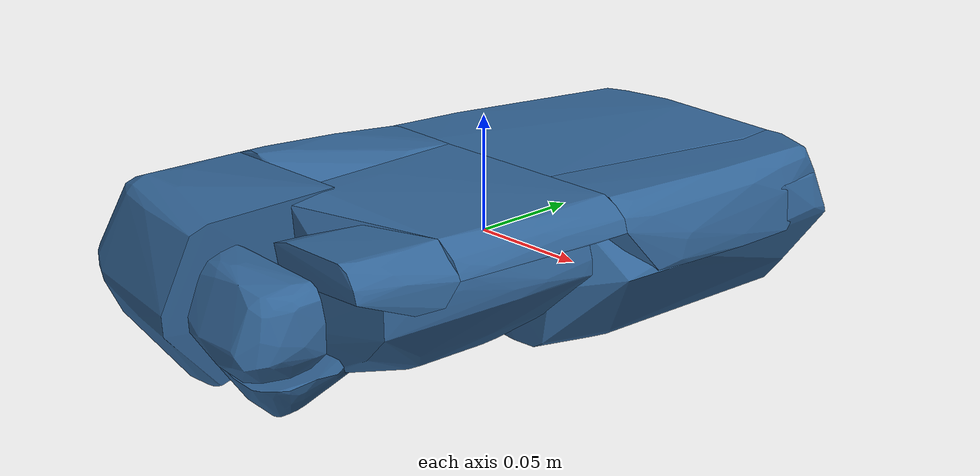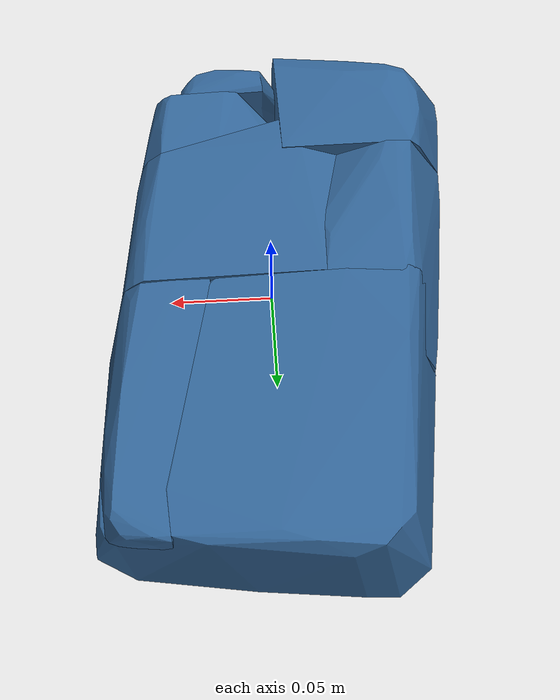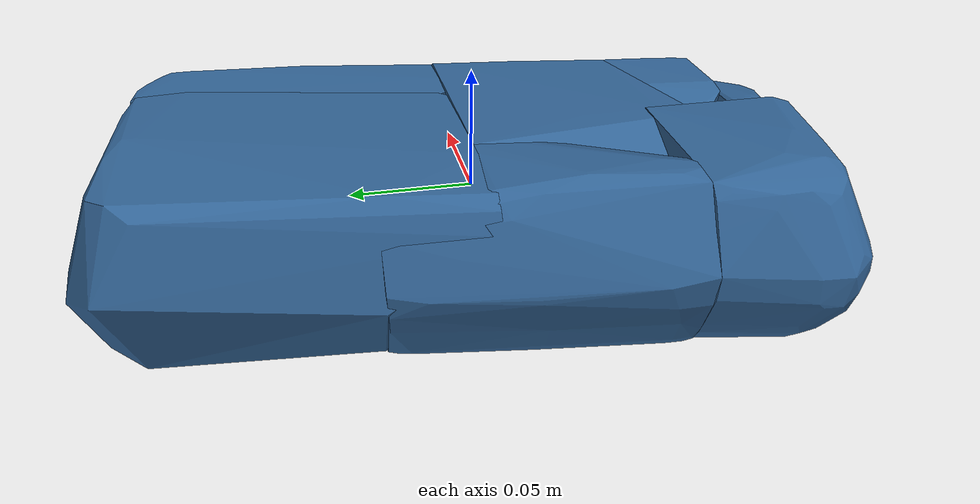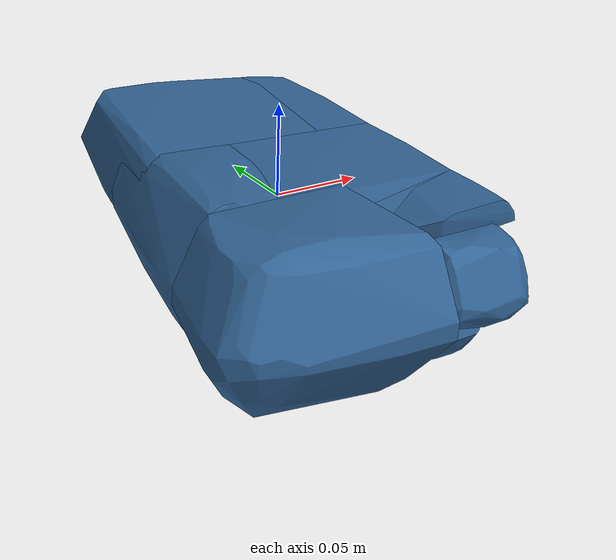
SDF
<?xml version='1.0' encoding='UTF-8'?>
<!-- This SDF was autogenerated by obj_to_drake_sdf.py -->
<sdf version="1.7">
  <model name="egg_carton">
    <link name="egg_carton">
      <inertial>
        <pose>0 0 0 0 0 0</pose>
        <mass>0.05</mass>
        <inertia>
          <ixx>0.00033045114</ixx>
          <iyy>0.00010751181</iyy>
          <izz>0.00040457808</izz>
          <ixy>-2.7076472e-05</ixy>
          <ixz>2.214521e-06</ixz>
          <iyz>1.9399355e-07</iyz>
        </inertia>
      </inertial>
      <visual name="convex_0">
        <pose>0 0 0 0 0 0</pose>
        <geometry>
          <mesh>
            <uri>egg_carton_convex_0.obj</uri>
          </mesh>
        </geometry>
        <material>
          <diffuse>0.19607843137254902 0.39215686274509803 0.5882352941176471 1</diffuse>
        </material>
      </visual>
      <collision name="convex_0_volume">
        <pose>0 0 0 0 0 0</pose>
        <geometry>
          <mesh>
            <uri>egg_carton_convex_0.obj</uri>
          </mesh>
        </geometry>
        <drake:proximity_properties xmlns:drake="uri:drake">
          <drake:compliant_hydroelastic/>
          <drake:hydroelastic_modulus> 3.0e7 </drake:hydroelastic_modulus>
          <drake:mesh_resolution_hint> 0.02 </drake:mesh_resolution_hint>
          <drake:hunt_crossley_dissipation>10</drake:hunt_crossley_dissipation>
          <drake:mu_dynamic>0.3</drake:mu_dynamic>
        </drake:proximity_properties>
      </collision>
      <visual name="convex_1">
        <pose>0 0 0 0 0 0</pose>
        <geometry>
          <mesh>
            <uri>egg_carton_convex_1.obj</uri>
          </mesh>
        </geometry>
        <material>
          <diffuse>0.19607843137254902 0.39215686274509803 0.5882352941176471 1</diffuse>
        </material>
      </visual>
      <collision name="convex_1_volume">
        <pose>0 0 0 0 0 0</pose>
        <geometry>
          <mesh>
            <uri>egg_carton_convex_1.obj</uri>
          </mesh>
        </geometry>
        <drake:proximity_properties xmlns:drake="uri:drake">
          <drake:compliant_hydroelastic/>
          <drake:hydroelastic_modulus> 3.0e7 </drake:hydroelastic_modulus>
          <drake:mesh_resolution_hint> 0.02 </drake:mesh_resolution_hint>
          <drake:hunt_crossley_dissipation>10</drake:hunt_crossley_dissipation>
          <drake:mu_dynamic>0.3</drake:mu_dynamic>
        </drake:proximity_properties>
      </collision>
      <visual name="convex_2">
        <pose>0 0 0 0 0 0</pose>
        <geometry>
          <mesh>
            <uri>egg_carton_convex_2.obj</uri>
          </mesh>
        </geometry>
        <material>
          <diffuse>0.19607843137254902 0.39215686274509803 0.5882352941176471 1</diffuse>
        </material>
      </visual>
      <collision name="convex_2_volume">
        <pose>0 0 0 0 0 0</pose>
        <geometry>
          <mesh>
            <uri>egg_carton_convex_2.obj</uri>
          </mesh>
        </geometry>
        <drake:proximity_properties xmlns:drake="uri:drake">
          <drake:compliant_hydroelastic/>
          <drake:hydroelastic_modulus> 3.0e7 </drake:hydroelastic_modulus>
          <drake:mesh_resolution_hint> 0.02 </drake:mesh_resolution_hint>
          <drake:hunt_crossley_dissipation>10</drake:hunt_crossley_dissipation>
          <drake:mu_dynamic>0.3</drake:mu_dynamic>
        </drake:proximity_properties>
      </collision>
      <visual name="convex_3">
        <pose>0 0 0 0 0 0</pose>
        <geometry>
          <mesh>
            <uri>egg_carton_convex_3.obj</uri>
          </mesh>
        </geometry>
        <material>
          <diffuse>0.19607843137254902 0.39215686274509803 0.5882352941176471 1</diffuse>
        </material>
      </visual>
      <collision name="convex_3_volume">
        <pose>0 0 0 0 0 0</pose>
        <geometry>
          <mesh>
            <uri>egg_carton_convex_3.obj</uri>
          </mesh>
        </geometry>
        <drake:proximity_properties xmlns:drake="uri:drake">
          <drake:compliant_hydroelastic/>
          <drake:hydroelastic_modulus> 3.0e7 </drake:hydroelastic_modulus>
          <drake:mesh_resolution_hint> 0.02 </drake:mesh_resolution_hint>
          <drake:hunt_crossley_dissipation>10</drake:hunt_crossley_dissipation>
          <drake:mu_dynamic>0.3</drake:mu_dynamic>
        </drake:proximity_properties>
      </collision>
      <visual name="convex_4">
        <pose>0 0 0 0 0 0</pose>
        <geometry>
          <mesh>
            <uri>egg_carton_convex_4.obj</uri>
          </mesh>
        </geometry>
        <material>
          <diffuse>0.19607843137254902 0.39215686274509803 0.5882352941176471 1</diffuse>
        </material>
      </visual>
      <collision name="convex_4_volume">
        <pose>0 0 0 0 0 0</pose>
        <geometry>
          <mesh>
            <uri>egg_carton_convex_4.obj</uri>
          </mesh>
        </geometry>
        <drake:proximity_properties xmlns:drake="uri:drake">
          <drake:compliant_hydroelastic/>
          <drake:hydroelastic_modulus> 3.0e7 </drake:hydroelastic_modulus>
          <drake:mesh_resolution_hint> 0.02 </drake:mesh_resolution_hint>
          <drake:hunt_crossley_dissipation>10</drake:hunt_crossley_dissipation>
          <drake:mu_dynamic>0.3</drake:mu_dynamic>
        </drake:proximity_properties>
      </collision>
      <visual name="convex_5">
        <pose>0 0 0 0 0 0</pose>
        <geometry>
          <mesh>
            <uri>egg_carton_convex_5.obj</uri>
          </mesh>
        </geometry>
        <material>
          <diffuse>0.19607843137254902 0.39215686274509803 0.5882352941176471 1</diffuse>
        </material>
      </visual>
      <collision name="convex_5_volume">
        <pose>0 0 0 0 0 0</pose>
        <geometry>
          <mesh>
            <uri>egg_carton_convex_5.obj</uri>
          </mesh>
        </geometry>
        <drake:proximity_properties xmlns:drake="uri:drake">
          <drake:compliant_hydroelastic/>
          <drake:hydroelastic_modulus> 3.0e7 </drake:hydroelastic_modulus>
          <drake:mesh_resolution_hint> 0.02 </drake:mesh_resolution_hint>
          <drake:hunt_crossley_dissipation>10</drake:hunt_crossley_dissipation>
          <drake:mu_dynamic>0.3</drake:mu_dynamic>
        </drake:proximity_properties>
      </collision>
      <visual name="convex_6">
        <pose>0 0 0 0 0 0</pose>
        <geometry>
          <mesh>
            <uri>egg_carton_convex_6.obj</uri>
          </mesh>
        </geometry>
        <material>
          <diffuse>0.19607843137254902 0.39215686274509803 0.5882352941176471 1</diffuse>
        </material>
      </visual>
      <collision name="convex_6_volume">
        <pose>0 0 0 0 0 0</pose>
        <geometry>
          <mesh>
            <uri>egg_carton_convex_6.obj</uri>
          </mesh>
        </geometry>
        <drake:proximity_properties xmlns:drake="uri:drake">
          <drake:compliant_hydroelastic/>
          <drake:hydroelastic_modulus> 3.0e7 </drake:hydroelastic_modulus>
          <drake:mesh_resolution_hint> 0.02 </drake:mesh_resolution_hint>
          <drake:hunt_crossley_dissipation>10</drake:hunt_crossley_dissipation>
          <drake:mu_dynamic>0.3</drake:mu_dynamic>
        </drake:proximity_properties>
      </collision>
      <visual name="convex_7">
        <pose>0 0 0 0 0 0</pose>
        <geometry>
          <mesh>
            <uri>egg_carton_convex_7.obj</uri>
          </mesh>
        </geometry>
        <material>
          <diffuse>0.19607843137254902 0.39215686274509803 0.5882352941176471 1</diffuse>
        </material>
      </visual>
      <collision name="convex_7_volume">
        <pose>0 0 0 0 0 0</pose>
        <geometry>
          <mesh>
            <uri>egg_carton_convex_7.obj</uri>
          </mesh>
        </geometry>
        <drake:proximity_properties xmlns:drake="uri:drake">
          <drake:compliant_hydroelastic/>
          <drake:hydroelastic_modulus> 3.0e7 </drake:hydroelastic_modulus>
          <drake:mesh_resolution_hint> 0.02 </drake:mesh_resolution_hint>
          <drake:hunt_crossley_dissipation>10</drake:hunt_crossley_dissipation>
          <drake:mu_dynamic>0.3</drake:mu_dynamic>
        </drake:proximity_properties>
      </collision>
      <visual name="convex_8">
        <pose>0 0 0 0 0 0</pose>
        <geometry>
          <mesh>
            <uri>egg_carton_convex_8.obj</uri>
          </mesh>
        </geometry>
        <material>
          <diffuse>0.19607843137254902 0.39215686274509803 0.5882352941176471 1</diffuse>
        </material>
      </visual>
      <collision name="convex_8_volume">
        <pose>0 0 0 0 0 0</pose>
        <geometry>
          <mesh>
            <uri>egg_carton_convex_8.obj</uri>
          </mesh>
        </geometry>
        <drake:proximity_properties xmlns:drake="uri:drake">
          <drake:compliant_hydroelastic/>
          <drake:hydroelastic_modulus> 3.0e7 </drake:hydroelastic_modulus>
          <drake:mesh_resolution_hint> 0.02 </drake:mesh_resolution_hint>
          <drake:hunt_crossley_dissipation>10</drake:hunt_crossley_dissipation>
          <drake:mu_dynamic>0.3</drake:mu_dynamic>
        </drake:proximity_properties>
      </collision>
      <visual name="convex_9">
        <pose>0 0 0 0 0 0</pose>
        <geometry>
          <mesh>
            <uri>egg_carton_convex_9.obj</uri>
          </mesh>
        </geometry>
        <material>
          <diffuse>0.19607843137254902 0.39215686274509803 0.5882352941176471 1</diffuse>
        </material>
      </visual>
      <collision name="convex_9_volume">
        <pose>0 0 0 0 0 0</pose>
        <geometry>
          <mesh>
            <uri>egg_carton_convex_9.obj</uri>
          </mesh>
        </geometry>
        <drake:proximity_properties xmlns:drake="uri:drake">
          <drake:compliant_hydroelastic/>
          <drake:hydroelastic_modulus> 3.0e7 </drake:hydroelastic_modulus>
          <drake:mesh_resolution_hint> 0.02 </drake:mesh_resolution_hint>
          <drake:hunt_crossley_dissipation>10</drake:hunt_crossley_dissipation>
          <drake:mu_dynamic>0.3</drake:mu_dynamic>
        </drake:proximity_properties>
      </collision>
    </link>
  </model>
</sdf>
